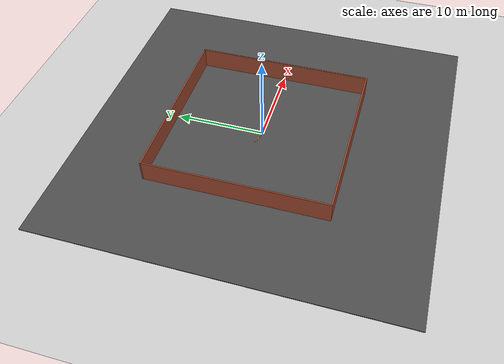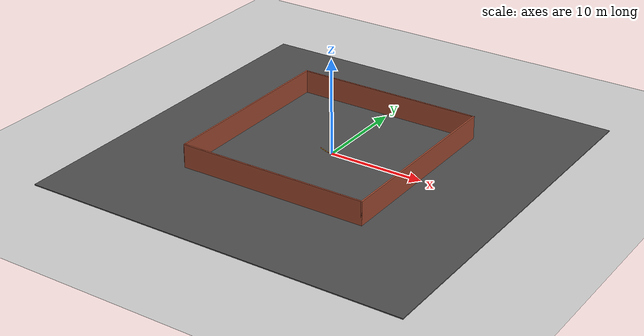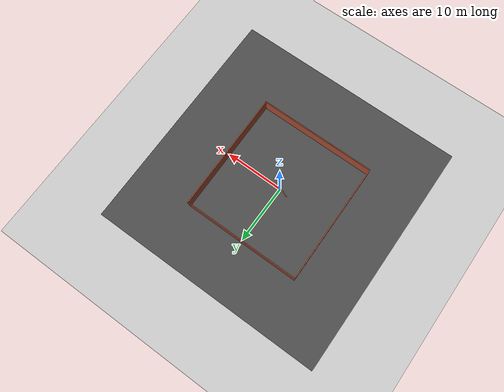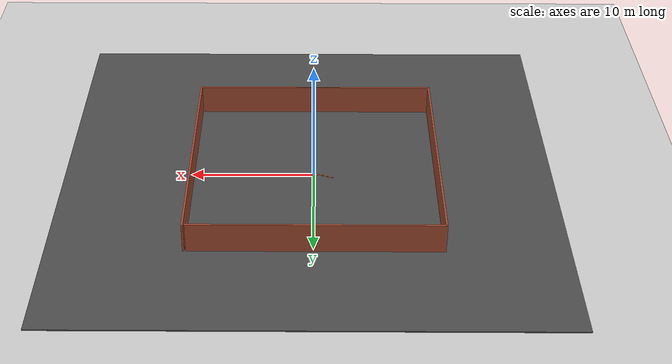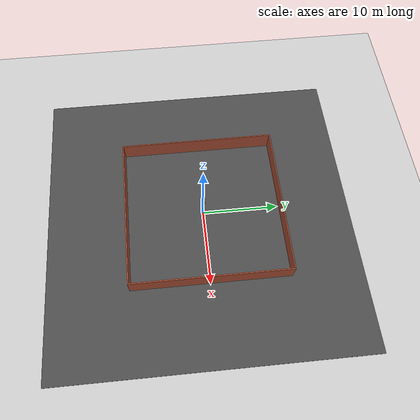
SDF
<sdf version="1.6">
 <world name="default">
  <model name="camera_model">
   <pose>0 0 6.5 0 1.57079 0</pose>
   <static>1</static>
   <link name="camera_link">
    <sensor name="camera1" type="camera">
     <update_rate>60</update_rate>
     <visualize>1</visualize>
     <camera name="head">
      <horizontal_fov>1.39626</horizontal_fov>
      <image><width>640</width><height>480</height><format>R8G8B8</format></image>
      <clip><near>0.02</near><far>500</far></clip>
      <noise><type>gaussian</type><mean>0</mean><stddev>0.007</stddev></noise>
     </camera>
     <plugin name="camera_controller" filename="libgazebo_ros_camera.so">
      <ros>
       <namespace>demo_cam</namespace>
       <argument>image_raw:=image_demo</argument>
       <argument>camera_info:=camera_info_demo</argument>
      </ros>
     </plugin>
    </sensor>
   </link>
  </model>
  <model name="ground_plane">
   <static>1</static>
   <link name="link">
    <collision name="collision">
     <geometry><plane><normal>0 0 1</normal><size>40 40</size></plane></geometry>
     <surface><friction><ode><mu>100</mu><mu2>50</mu2></ode></friction></surface>
    </collision>
    <visual name="visual">
     <cast_shadows>0</cast_shadows>
     <geometry><plane><normal>0 0 1</normal><size>40 40</size></plane></geometry>
     <material>
      <script><uri>file://media/materials/scripts/gazebo.material</uri><name>Gazebo/Grey</name></script>
     </material>
    </visual>
    <velocity_decay><linear>0</linear><angular>0</angular></velocity_decay>
   </link>
  </model>
  <model name="asphalt_plane">
   <static>1</static>
   <link name="link">
    <collision name="collision"><geometry><box><size>40 40 0.1</size></box></geometry></collision>
    <visual name="visual">
     <cast_shadows>0</cast_shadows>
     <geometry><box><size>40 40 0.1</size></box></geometry>
     <material>
      <script>
       <uri>model://asphalt_plane/materials/scripts</uri>
       <uri>model://asphalt_plane/materials/textures</uri>
       <name>vrc/asphalt</name>
      </script>
     </material>
    </visual>
    <velocity_decay><linear>0</linear><angular>0</angular></velocity_decay>
   </link>
   <pose>0.433796 -0.497378 0 0 -0 0</pose>
  </model>
  <model name="DashLine">
   <link name="link">
    <inertial>
     <mass>1</mass>
     <inertia>
      <ixx>0.166667</ixx>
      <ixy>0</ixy>
      <ixz>0</ixz>
      <iyy>0.166667</iyy>
      <iyz>0</iyz>
      <izz>0.166667</izz>
     </inertia>
    </inertial>
    <gravity>0</gravity>
    <visual name="ModelPreview_3::link::visual_3">
     <geometry><box><size>0.2 0.1 0.01</size></box></geometry>
     <material>
      <script><name>Gazebo/Yellow</name><uri>file://media/materials/scripts/gazebo.material</uri></script>
      <shader type="vertex"><normal_map>__default__</normal_map></shader>
      <ambient>0.988 0.914 0.31 1</ambient>
      <diffuse>0.7 0.7 0.7 1</diffuse>
      <specular>0.01 0.01 0.01 1</specular>
      <emissive>0 0 0 1</emissive>
     </material>
     <pose>0.2 0 0 0 -0 0</pose>
    </visual>
    <visual name="ModelPreview_6::link::visual_5">
     <geometry><box><size>0.2 0.1 0.01</size></box></geometry>
     <material>
      <script><name>Gazebo/Yellow</name><uri>file://media/materials/scripts/gazebo.material</uri></script>
      <shader type="vertex"><normal_map>__default__</normal_map></shader>
      <ambient>0.988 0.914 0.31 1</ambient>
      <diffuse>0.7 0.7 0.7 1</diffuse>
      <specular>0.01 0.01 0.01 1</specular>
      <emissive>0 0 0 1</emissive>
     </material>
     <pose>0.6 0 0 0 -0 0</pose>
    </visual>
    <visual name="ModelPreview_3::link::visual_4">
     <geometry><box><size>0.2 0.1 0.01</size></box></geometry>
     <material>
      <script><name>Gazebo/Red</name><uri>file://media/materials/scripts/gazebo.material</uri></script>
      <shader type="vertex"><normal_map>__default__</normal_map></shader>
      <ambient>0.937 0.161 0.161 1</ambient>
      <diffuse>0.7 0.7 0.7 1</diffuse>
      <specular>0.01 0.01 0.01 1</specular>
      <emissive>0 0 0 1</emissive>
     </material>
     <pose>0.4 0 0 0 -0 0</pose>
    </visual>
    <visual name="ModelPreview_3::link::visual_2">
     <geometry><box><size>0.2 0.1 0.01</size></box></geometry>
     <material>
      <script><name>Gazebo/Red</name><uri>file://media/materials/scripts/gazebo.material</uri></script>
      <shader type="vertex"><normal_map>__default__</normal_map></shader>
      <ambient>0.937 0.161 0.161 1</ambient>
      <diffuse>0.7 0.7 0.7 1</diffuse>
      <specular>0.01 0.01 0.01 1</specular>
      <emissive>0 0 0 1</emissive>
     </material>
    </visual>
    <visual name="visual">
     <geometry><box><size>0.2 0.1 0.01</size></box></geometry>
     <material>
      <script><name>Gazebo/Red</name><uri>file://media/materials/scripts/gazebo.material</uri></script>
      <shader type="vertex"><normal_map>__default__</normal_map></shader>
      <ambient>0.8 0 0 1</ambient>
      <diffuse>0.7 0.7 0.7 1</diffuse>
      <specular>0.01 0.01 0.01 1</specular>
      <emissive>0 0 0 1</emissive>
     </material>
     <pose>-0.4 0 0 0 -0 0</pose>
    </visual>
    <visual name="ModelPreview_3::link::visual_1">
     <geometry><box><size>0.2 0.1 0.01</size></box></geometry>
     <material>
      <script><name>Gazebo/Yellow</name><uri>file://media/materials/scripts/gazebo.material</uri></script>
      <shader type="vertex"><normal_map>__default__</normal_map></shader>
      <ambient>0.988 0.914 0.31 1</ambient>
      <diffuse>0.7 0.7 0.7 1</diffuse>
      <specular>0.01 0.01 0.01 1</specular>
      <emissive>0 0 0 1</emissive>
     </material>
     <pose>-0.2 0 0 0 -0 0</pose>
    </visual>
   </link>
   <static>0</static>
   <pose>0 0 0.05 0 -0 0</pose>
  </model>
  <model name="DashLine_clone_clone_clone_12">
   <link name="link">
    <inertial>
     <mass>1</mass>
     <inertia>
      <ixx>0.166667</ixx>
      <ixy>0</ixy>
      <ixz>0</ixz>
      <iyy>0.166667</iyy>
      <iyz>0</iyz>
      <izz>0.166667</izz>
     </inertia>
    </inertial>
    <gravity>0</gravity>
    <visual name="ModelPreview_3::link::visual_3">
     <geometry><box><size>0.2 0.1 0.01</size></box></geometry>
     <material>
      <script><name>Gazebo/Yellow</name><uri>file://media/materials/scripts/gazebo.material</uri></script>
      <shader type="vertex"><normal_map>__default__</normal_map></shader>
      <ambient>0.988 0.914 0.31 1</ambient>
      <diffuse>0.7 0.7 0.7 1</diffuse>
      <specular>0.01 0.01 0.01 1</specular>
      <emissive>0 0 0 1</emissive>
     </material>
     <pose>0.2 0 0 0 -0 0</pose>
    </visual>
    <visual name="ModelPreview_6::link::visual_5">
     <geometry><box><size>0.2 0.1 0.01</size></box></geometry>
     <material>
      <script><name>Gazebo/Yellow</name><uri>file://media/materials/scripts/gazebo.material</uri></script>
      <shader type="vertex"><normal_map>__default__</normal_map></shader>
      <ambient>0.988 0.914 0.31 1</ambient>
      <diffuse>0.7 0.7 0.7 1</diffuse>
      <specular>0.01 0.01 0.01 1</specular>
      <emissive>0 0 0 1</emissive>
     </material>
     <pose>0.6 0 0 0 -0 0</pose>
    </visual>
    <visual name="ModelPreview_3::link::visual_4">
     <geometry><box><size>0.2 0.1 0.01</size></box></geometry>
     <material>
      <script><name>Gazebo/Red</name><uri>file://media/materials/scripts/gazebo.material</uri></script>
      <shader type="vertex"><normal_map>__default__</normal_map></shader>
      <ambient>0.937 0.161 0.161 1</ambient>
      <diffuse>0.7 0.7 0.7 1</diffuse>
      <specular>0.01 0.01 0.01 1</specular>
      <emissive>0 0 0 1</emissive>
     </material>
     <pose>0.4 0 0 0 -0 0</pose>
    </visual>
    <visual name="ModelPreview_3::link::visual_2">
     <geometry><box><size>0.2 0.1 0.01</size></box></geometry>
     <material>
      <script><name>Gazebo/Red</name><uri>file://media/materials/scripts/gazebo.material</uri></script>
      <shader type="vertex"><normal_map>__default__</normal_map></shader>
      <ambient>0.937 0.161 0.161 1</ambient>
      <diffuse>0.7 0.7 0.7 1</diffuse>
      <specular>0.01 0.01 0.01 1</specular>
      <emissive>0 0 0 1</emissive>
     </material>
    </visual>
    <visual name="visual">
     <geometry><box><size>0.2 0.1 0.01</size></box></geometry>
     <material>
      <script><name>Gazebo/Red</name><uri>file://media/materials/scripts/gazebo.material</uri></script>
      <shader type="vertex"><normal_map>__default__</normal_map></shader>
      <ambient>0.8 0 0 1</ambient>
      <diffuse>0.7 0.7 0.7 1</diffuse>
      <specular>0.01 0.01 0.01 1</specular>
      <emissive>0 0 0 1</emissive>
     </material>
     <pose>-0.4 0 0 0 -0 0</pose>
    </visual>
    <visual name="ModelPreview_3::link::visual_1">
     <geometry><box><size>0.2 0.1 0.01</size></box></geometry>
     <material>
      <script><name>Gazebo/Yellow</name><uri>file://media/materials/scripts/gazebo.material</uri></script>
      <shader type="vertex"><normal_map>__default__</normal_map></shader>
      <ambient>0.988 0.914 0.31 1</ambient>
      <diffuse>0.7 0.7 0.7 1</diffuse>
      <specular>0.01 0.01 0.01 1</specular>
      <emissive>0 0 0 1</emissive>
     </material>
     <pose>-0.2 0 0 0 -0 0</pose>
    </visual>
   </link>
   <static>0</static>
   <pose>-1.13746 0.249942 0.05 0 0 -0.383062</pose>
  </model>
  <model name="walls">
   <pose>-0.075421 0.139128 0 0 -0 0</pose>
   <link name="Wall_4">
    <collision name="Wall_4_Collision">
     <geometry><box><size>19.75 0.15 2.5</size></box></geometry>
     <pose>0 0 1.25 0 -0 0</pose>
    </collision>
    <visual name="Wall_4_Visual">
     <pose>0 0 1.25 0 -0 0</pose>
     <geometry><box><size>19.75 0.15 2.5</size></box></geometry>
     <material>
      <script><uri>file://media/materials/scripts/gazebo.material</uri><name>Gazebo/Bricks</name></script>
      <ambient>1 1 1 1</ambient>
     </material>
     <meta><layer>0</layer></meta>
    </visual>
    <pose>-0.125 10.175 0 0 -0 3.14159</pose>
   </link>
   <link name="Wall_6">
    <collision name="Wall_6_Collision">
     <geometry><box><size>20.5 0.15 2.5</size></box></geometry>
     <pose>0 0 1.25 0 -0 0</pose>
    </collision>
    <visual name="Wall_6_Visual">
     <pose>0 0 1.25 0 -0 0</pose>
     <geometry><box><size>20.5 0.15 2.5</size></box></geometry>
     <material>
      <script><uri>file://media/materials/scripts/gazebo.material</uri><name>Gazebo/Bricks</name></script>
      <ambient>1 1 1 1</ambient>
     </material>
     <meta><layer>0</layer></meta>
    </visual>
    <pose>-9.925 0 0 0 -0 -1.5708</pose>
   </link>
   <link name="Wall_7">
    <collision name="Wall_7_Collision">
     <geometry><box><size>20 0.15 2.5</size></box></geometry>
     <pose>0 0 1.25 0 -0 0</pose>
    </collision>
    <visual name="Wall_7_Visual">
     <pose>0 0 1.25 0 -0 0</pose>
     <geometry><box><size>20 0.15 2.5</size></box></geometry>
     <material>
      <script><uri>file://media/materials/scripts/gazebo.material</uri><name>Gazebo/Bricks</name></script>
      <ambient>1 1 1 1</ambient>
     </material>
     <meta><layer>0</layer></meta>
    </visual>
    <pose>-0 -10.175 0 0 -0 0</pose>
   </link>
   <link name="Wall_8">
    <collision name="Wall_8_Collision">
     <geometry><box><size>20.5 0.15 2.5</size></box></geometry>
     <pose>0 0 1.25 0 -0 0</pose>
    </collision>
    <visual name="Wall_8_Visual">
     <pose>0 0 1.25 0 -0 0</pose>
     <geometry><box><size>20.5 0.15 2.5</size></box></geometry>
     <material>
      <script><uri>file://media/materials/scripts/gazebo.material</uri><name>Gazebo/Bricks</name></script>
      <ambient>1 1 1 1</ambient>
     </material>
     <meta><layer>0</layer></meta>
    </visual>
    <pose>9.925 0 0 0 -0 1.5708</pose>
   </link>
   <static>1</static>
  </model>
 </world>
</sdf>
